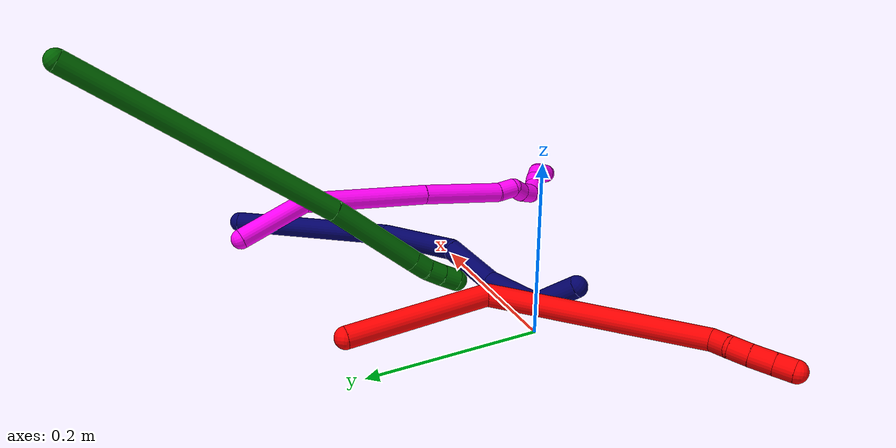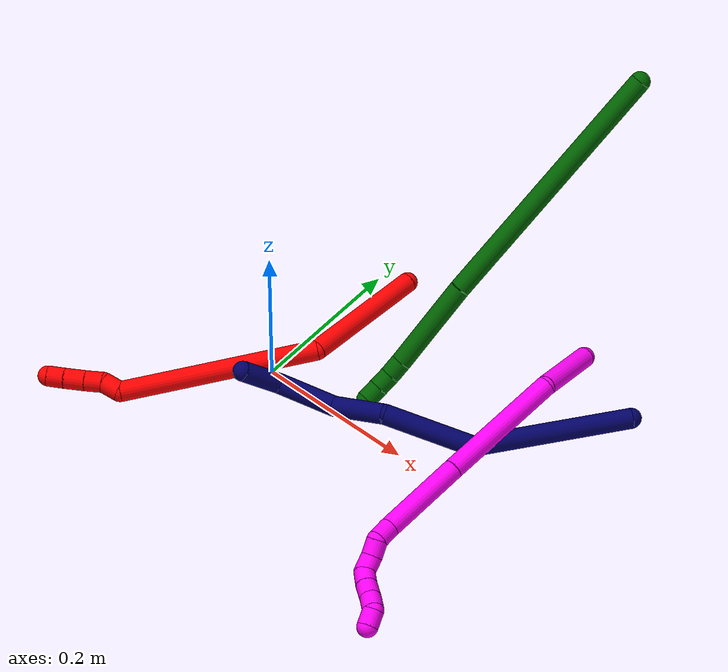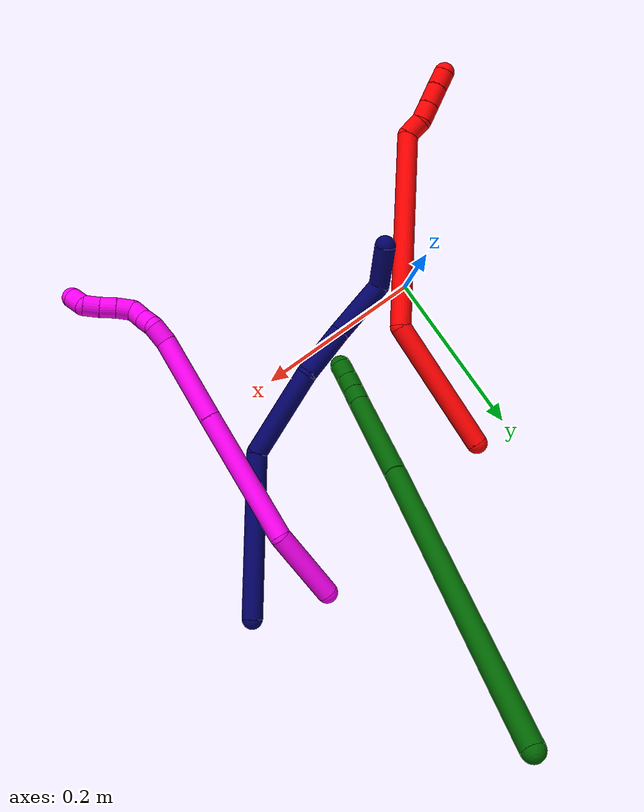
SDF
<sdf version="1.7">
 <world name="default">
  <model name="2">
   <static>0</static>
   <link name="2">
    <collision name="collision-cylinder-e_1_1_4">
     <pose>-0.042284 -0.063169 0.031281 1.11099 -0.540317 -0.340449</pose>
     <geometry><cylinder><radius>0.0125</radius><length>0.164398</length></cylinder></geometry>
     <surface>
      <friction><ode><mu>1.16</mu><mu2>1.16</mu2><slip1>0</slip1><slip2>0</slip2></ode></friction>
      <contact><ode><kp>1e+06</kp><kd>1</kd><max_vel>0</max_vel><min_depth>0.001</min_depth></ode></contact>
     </surface>
    </collision>
    <visual name="visual-cylinder-e_1_1_4">
     <pose>-0.042284 -0.063169 0.031281 1.11099 -0.540317 -0.340449</pose>
     <geometry><cylinder><radius>0.0125</radius><length>0.164398</length></cylinder></geometry>
     <material><ambient>1 0 0 1</ambient></material>
    </visual>
    <collision name="collision-cylinder-e_2_4_5">
     <pose>-0.189798 -0.185622 0.052059 1.74614 -1.0511 -1.21032</pose>
     <geometry><cylinder><radius>0.0125</radius><length>0.242474</length></cylinder></geometry>
     <surface>
      <friction><ode><mu>1.16</mu><mu2>1.16</mu2><slip1>0</slip1><slip2>0</slip2></ode></friction>
      <contact><ode><kp>1e+06</kp><kd>1</kd><max_vel>0</max_vel><min_depth>0.001</min_depth></ode></contact>
     </surface>
    </collision>
    <visual name="visual-cylinder-e_2_4_5">
     <pose>-0.189798 -0.185622 0.052059 1.74614 -1.0511 -1.21032</pose>
     <geometry><cylinder><radius>0.0125</radius><length>0.242474</length></cylinder></geometry>
     <material><ambient>1 0 0 1</ambient></material>
    </visual>
    <collision name="collision-cylinder-e_3_5_6">
     <pose>-0.306062 -0.242159 0.038729 -2.37052 -1.22769 2.09649</pose>
     <geometry><cylinder><radius>0.0125</radius><length>0.023434</length></cylinder></geometry>
     <surface>
      <friction><ode><mu>1.16</mu><mu2>1.16</mu2><slip1>0</slip1><slip2>0</slip2></ode></friction>
      <contact><ode><kp>1e+06</kp><kd>1</kd><max_vel>0</max_vel><min_depth>0.001</min_depth></ode></contact>
     </surface>
    </collision>
    <visual name="visual-cylinder-e_3_5_6">
     <pose>-0.306062 -0.242159 0.038729 -2.37052 -1.22769 2.09649</pose>
     <geometry><cylinder><radius>0.0125</radius><length>0.023434</length></cylinder></geometry>
     <material><ambient>1 0 0 1</ambient></material>
    </visual>
    <collision name="collision-cylinder-e_4_6_7">
     <pose>-0.327721 -0.241369 0.032794 2.57977 -1.23793 -2.37188</pose>
     <geometry><cylinder><radius>0.0125</radius><length>0.022483</length></cylinder></geometry>
     <surface>
      <friction><ode><mu>1.16</mu><mu2>1.16</mu2><slip1>0</slip1><slip2>0</slip2></ode></friction>
      <contact><ode><kp>1e+06</kp><kd>1</kd><max_vel>0</max_vel><min_depth>0.001</min_depth></ode></contact>
     </surface>
    </collision>
    <visual name="visual-cylinder-e_4_6_7">
     <pose>-0.327721 -0.241369 0.032794 2.57977 -1.23793 -2.37188</pose>
     <geometry><cylinder><radius>0.0125</radius><length>0.022483</length></cylinder></geometry>
     <material><ambient>1 0 0 1</ambient></material>
    </visual>
    <collision name="collision-cylinder-e_5_7_8">
     <pose>-0.350797 -0.245343 0.026674 2.55146 -1.28756 -2.37195</pose>
     <geometry><cylinder><radius>0.0125</radius><length>0.025937</length></cylinder></geometry>
     <surface>
      <friction><ode><mu>1.16</mu><mu2>1.16</mu2><slip1>0</slip1><slip2>0</slip2></ode></friction>
      <contact><ode><kp>1e+06</kp><kd>1</kd><max_vel>0</max_vel><min_depth>0.001</min_depth></ode></contact>
     </surface>
    </collision>
    <visual name="visual-cylinder-e_5_7_8">
     <pose>-0.350797 -0.245343 0.026674 2.55146 -1.28756 -2.37195</pose>
     <geometry><cylinder><radius>0.0125</radius><length>0.025937</length></cylinder></geometry>
     <material><ambient>1 0 0 1</ambient></material>
    </visual>
    <collision name="collision-cylinder-e_6_8_2">
     <pose>-0.373508 -0.248789 0.021241 2.60835 -1.3033 -2.45394</pose>
     <geometry><cylinder><radius>0.0125</radius><length>0.021274</length></cylinder></geometry>
     <surface>
      <friction><ode><mu>1.16</mu><mu2>1.16</mu2><slip1>0</slip1><slip2>0</slip2></ode></friction>
      <contact><ode><kp>1e+06</kp><kd>1</kd><max_vel>0</max_vel><min_depth>0.001</min_depth></ode></contact>
     </surface>
    </collision>
    <visual name="visual-cylinder-e_6_8_2">
     <pose>-0.373508 -0.248789 0.021241 2.60835 -1.3033 -2.45394</pose>
     <geometry><cylinder><radius>0.0125</radius><length>0.021274</length></cylinder></geometry>
     <material><ambient>1 0 0 1</ambient></material>
    </visual>
    <collision name="collision-sphere-2">
     <pose>-0.383766 -0.250218 0.01882 0 -0 0</pose>
     <geometry><sphere><radius>0.0125</radius></sphere></geometry>
     <surface>
      <friction><ode><mu>1.16</mu><mu2>1.16</mu2><slip1>0</slip1><slip2>0</slip2></ode></friction>
      <contact><ode><kp>1e+06</kp><kd>1</kd><max_vel>0</max_vel><min_depth>0.001</min_depth></ode></contact>
     </surface>
    </collision>
    <visual name="visual-sphere-2">
     <pose>-0.383766 -0.250218 0.01882 0 -0 0</pose>
     <geometry><sphere><radius>0.0125</radius></sphere></geometry>
     <material><ambient>1 0 0 1</ambient></material>
    </visual>
    <collision name="collision-sphere-4">
     <pose>-0.084568 -0.126337 0.062562 0 -0 0</pose>
     <geometry><sphere><radius>0.0125</radius></sphere></geometry>
     <surface>
      <friction><ode><mu>1.16</mu><mu2>1.16</mu2><slip1>0</slip1><slip2>0</slip2></ode></friction>
      <contact><ode><kp>1e+06</kp><kd>1</kd><max_vel>0</max_vel><min_depth>0.001</min_depth></ode></contact>
     </surface>
    </collision>
    <visual name="visual-sphere-4">
     <pose>-0.084568 -0.126337 0.062562 0 -0 0</pose>
     <geometry><sphere><radius>0.0125</radius></sphere></geometry>
     <material><ambient>1 0 0 1</ambient></material>
    </visual>
    <collision name="collision-sphere-1">
     <geometry><sphere><radius>0.0125</radius></sphere></geometry>
     <surface>
      <friction><ode><mu>1.16</mu><mu2>1.16</mu2><slip1>0</slip1><slip2>0</slip2></ode></friction>
      <contact><ode><kp>1e+06</kp><kd>1</kd><max_vel>0</max_vel><min_depth>0.001</min_depth></ode></contact>
     </surface>
    </collision>
    <visual name="visual-sphere-1">
     <geometry><sphere><radius>0.0125</radius></sphere></geometry>
     <material><ambient>1 0 0 1</ambient></material>
    </visual>
    <collision name="collision-sphere-8">
     <pose>-0.363249 -0.247359 0.023663 0 -0 0</pose>
     <geometry><sphere><radius>0.0125</radius></sphere></geometry>
     <surface>
      <friction><ode><mu>1.16</mu><mu2>1.16</mu2><slip1>0</slip1><slip2>0</slip2></ode></friction>
      <contact><ode><kp>1e+06</kp><kd>1</kd><max_vel>0</max_vel><min_depth>0.001</min_depth></ode></contact>
     </surface>
    </collision>
    <visual name="visual-sphere-8">
     <pose>-0.363249 -0.247359 0.023663 0 -0 0</pose>
     <geometry><sphere><radius>0.0125</radius></sphere></geometry>
     <material><ambient>1 0 0 1</ambient></material>
    </visual>
    <collision name="collision-sphere-5">
     <pose>-0.295029 -0.244906 0.041556 0 -0 0</pose>
     <geometry><sphere><radius>0.0125</radius></sphere></geometry>
     <surface>
      <friction><ode><mu>1.16</mu><mu2>1.16</mu2><slip1>0</slip1><slip2>0</slip2></ode></friction>
      <contact><ode><kp>1e+06</kp><kd>1</kd><max_vel>0</max_vel><min_depth>0.001</min_depth></ode></contact>
     </surface>
    </collision>
    <visual name="visual-sphere-5">
     <pose>-0.295029 -0.244906 0.041556 0 -0 0</pose>
     <geometry><sphere><radius>0.0125</radius></sphere></geometry>
     <material><ambient>1 0 0 1</ambient></material>
    </visual>
    <collision name="collision-sphere-6">
     <pose>-0.317096 -0.239412 0.035902 0 -0 0</pose>
     <geometry><sphere><radius>0.0125</radius></sphere></geometry>
     <surface>
      <friction><ode><mu>1.16</mu><mu2>1.16</mu2><slip1>0</slip1><slip2>0</slip2></ode></friction>
      <contact><ode><kp>1e+06</kp><kd>1</kd><max_vel>0</max_vel><min_depth>0.001</min_depth></ode></contact>
     </surface>
    </collision>
    <visual name="visual-sphere-6">
     <pose>-0.317096 -0.239412 0.035902 0 -0 0</pose>
     <geometry><sphere><radius>0.0125</radius></sphere></geometry>
     <material><ambient>1 0 0 1</ambient></material>
    </visual>
    <collision name="collision-sphere-7">
     <pose>-0.338345 -0.243326 0.029685 0 -0 0</pose>
     <geometry><sphere><radius>0.0125</radius></sphere></geometry>
     <surface>
      <friction><ode><mu>1.16</mu><mu2>1.16</mu2><slip1>0</slip1><slip2>0</slip2></ode></friction>
      <contact><ode><kp>1e+06</kp><kd>1</kd><max_vel>0</max_vel><min_depth>0.001</min_depth></ode></contact>
     </surface>
    </collision>
    <visual name="visual-sphere-7">
     <pose>-0.338345 -0.243326 0.029685 0 -0 0</pose>
     <geometry><sphere><radius>0.0125</radius></sphere></geometry>
     <material><ambient>1 0 0 1</ambient></material>
    </visual>
    <inertial>
     <pose>-0.169115 -0.156302 0.041108 0 -0 0</pose>
     <mass>0.5</mass>
     <inertia>
      <ixx>-0.000182</ixx>
      <ixy>0</ixy>
      <ixz>0</ixz>
      <iyy>0.000423</iyy>
      <iyz>0</iyz>
      <izz>0.002118</izz>
     </inertia>
    </inertial>
   </link>
   <pose>0.044883 0.202432 0.024365 0.522041 0.244905 0.50483</pose>
  </model>
  <model name="6">
   <static>0</static>
   <link name="6">
    <collision name="collision-cylinder-e_1_1_4">
     <pose>-0.007167 -0.056381 -0.151963 2.78632 -0.044191 -0.244956</pose>
     <geometry><cylinder><radius>0.0125</radius><length>0.324487</length></cylinder></geometry>
     <surface>
      <friction><ode><mu>1.16</mu><mu2>1.16</mu2><slip1>0</slip1><slip2>0</slip2></ode></friction>
      <contact><ode><kp>1e+06</kp><kd>1</kd><max_vel>0</max_vel><min_depth>0.001</min_depth></ode></contact>
     </surface>
    </collision>
    <visual name="visual-cylinder-e_1_1_4">
     <pose>-0.007167 -0.056381 -0.151963 2.78632 -0.044191 -0.244956</pose>
     <geometry><cylinder><radius>0.0125</radius><length>0.324487</length></cylinder></geometry>
     <material><ambient>0 0.392157 0.003922 1</ambient></material>
    </visual>
    <collision name="collision-cylinder-e_2_4_5">
     <pose>-0.014588 -0.129079 -0.358253 2.84979 -0.004475 -0.030454</pose>
     <geometry><cylinder><radius>0.0125</radius><length>0.11345</length></cylinder></geometry>
     <surface>
      <friction><ode><mu>1.16</mu><mu2>1.16</mu2><slip1>0</slip1><slip2>0</slip2></ode></friction>
      <contact><ode><kp>1e+06</kp><kd>1</kd><max_vel>0</max_vel><min_depth>0.001</min_depth></ode></contact>
     </surface>
    </collision>
    <visual name="visual-cylinder-e_2_4_5">
     <pose>-0.014588 -0.129079 -0.358253 2.84979 -0.004475 -0.030454</pose>
     <geometry><cylinder><radius>0.0125</radius><length>0.11345</length></cylinder></geometry>
     <material><ambient>0 0.392157 0.003922 1</ambient></material>
    </visual>
    <collision name="collision-cylinder-e_3_5_6">
     <pose>-0.015166 -0.148574 -0.422772 2.8395 -0.030351 -0.198766</pose>
     <geometry><cylinder><radius>0.0125</radius><length>0.021361</length></cylinder></geometry>
     <surface>
      <friction><ode><mu>1.16</mu><mu2>1.16</mu2><slip1>0</slip1><slip2>0</slip2></ode></friction>
      <contact><ode><kp>1e+06</kp><kd>1</kd><max_vel>0</max_vel><min_depth>0.001</min_depth></ode></contact>
     </surface>
    </collision>
    <visual name="visual-cylinder-e_3_5_6">
     <pose>-0.015166 -0.148574 -0.422772 2.8395 -0.030351 -0.198766</pose>
     <geometry><cylinder><radius>0.0125</radius><length>0.021361</length></cylinder></geometry>
     <material><ambient>0 0.392157 0.003922 1</ambient></material>
    </visual>
    <collision name="collision-cylinder-e_4_6_7">
     <pose>-0.016362 -0.156262 -0.442159 2.68538 -0.084906 -0.361958</pose>
     <geometry><cylinder><radius>0.0125</radius><length>0.020559</length></cylinder></geometry>
     <surface>
      <friction><ode><mu>1.16</mu><mu2>1.16</mu2><slip1>0</slip1><slip2>0</slip2></ode></friction>
      <contact><ode><kp>1e+06</kp><kd>1</kd><max_vel>0</max_vel><min_depth>0.001</min_depth></ode></contact>
     </surface>
    </collision>
    <visual name="visual-cylinder-e_4_6_7">
     <pose>-0.016362 -0.156262 -0.442159 2.68538 -0.084906 -0.361958</pose>
     <geometry><cylinder><radius>0.0125</radius><length>0.020559</length></cylinder></geometry>
     <material><ambient>0 0.392157 0.003922 1</ambient></material>
    </visual>
    <collision name="collision-cylinder-e_5_7_2">
     <pose>-0.01809 -0.165551 -0.460179 2.64558 -0.085123 -0.333248</pose>
     <geometry><cylinder><radius>0.0125</radius><length>0.020143</length></cylinder></geometry>
     <surface>
      <friction><ode><mu>1.16</mu><mu2>1.16</mu2><slip1>0</slip1><slip2>0</slip2></ode></friction>
      <contact><ode><kp>1e+06</kp><kd>1</kd><max_vel>0</max_vel><min_depth>0.001</min_depth></ode></contact>
     </surface>
    </collision>
    <visual name="visual-cylinder-e_5_7_2">
     <pose>-0.01809 -0.165551 -0.460179 2.64558 -0.085123 -0.333248</pose>
     <geometry><cylinder><radius>0.0125</radius><length>0.020143</length></cylinder></geometry>
     <material><ambient>0 0.392157 0.003922 1</ambient></material>
    </visual>
    <collision name="collision-sphere-2">
     <pose>-0.018947 -0.170327 -0.469005 0 -0 0</pose>
     <geometry><sphere><radius>0.0125</radius></sphere></geometry>
     <surface>
      <friction><ode><mu>1.16</mu><mu2>1.16</mu2><slip1>0</slip1><slip2>0</slip2></ode></friction>
      <contact><ode><kp>1e+06</kp><kd>1</kd><max_vel>0</max_vel><min_depth>0.001</min_depth></ode></contact>
     </surface>
    </collision>
    <visual name="visual-sphere-2">
     <pose>-0.018947 -0.170327 -0.469005 0 -0 0</pose>
     <geometry><sphere><radius>0.0125</radius></sphere></geometry>
     <material><ambient>0 0.392157 0.003922 1</ambient></material>
    </visual>
    <collision name="collision-sphere-7">
     <pose>-0.017234 -0.160775 -0.451354 0 -0 0</pose>
     <geometry><sphere><radius>0.0125</radius></sphere></geometry>
     <surface>
      <friction><ode><mu>1.16</mu><mu2>1.16</mu2><slip1>0</slip1><slip2>0</slip2></ode></friction>
      <contact><ode><kp>1e+06</kp><kd>1</kd><max_vel>0</max_vel><min_depth>0.001</min_depth></ode></contact>
     </surface>
    </collision>
    <visual name="visual-sphere-7">
     <pose>-0.017234 -0.160775 -0.451354 0 -0 0</pose>
     <geometry><sphere><radius>0.0125</radius></sphere></geometry>
     <material><ambient>0 0.392157 0.003922 1</ambient></material>
    </visual>
    <collision name="collision-sphere-6">
     <pose>-0.015491 -0.15175 -0.432964 0 -0 0</pose>
     <geometry><sphere><radius>0.0125</radius></sphere></geometry>
     <surface>
      <friction><ode><mu>1.16</mu><mu2>1.16</mu2><slip1>0</slip1><slip2>0</slip2></ode></friction>
      <contact><ode><kp>1e+06</kp><kd>1</kd><max_vel>0</max_vel><min_depth>0.001</min_depth></ode></contact>
     </surface>
    </collision>
    <visual name="visual-sphere-6">
     <pose>-0.015491 -0.15175 -0.432964 0 -0 0</pose>
     <geometry><sphere><radius>0.0125</radius></sphere></geometry>
     <material><ambient>0 0.392157 0.003922 1</ambient></material>
    </visual>
    <collision name="collision-sphere-5">
     <pose>-0.014842 -0.145398 -0.412579 0 -0 0</pose>
     <geometry><sphere><radius>0.0125</radius></sphere></geometry>
     <surface>
      <friction><ode><mu>1.16</mu><mu2>1.16</mu2><slip1>0</slip1><slip2>0</slip2></ode></friction>
      <contact><ode><kp>1e+06</kp><kd>1</kd><max_vel>0</max_vel><min_depth>0.001</min_depth></ode></contact>
     </surface>
    </collision>
    <visual name="visual-sphere-5">
     <pose>-0.014842 -0.145398 -0.412579 0 -0 0</pose>
     <geometry><sphere><radius>0.0125</radius></sphere></geometry>
     <material><ambient>0 0.392157 0.003922 1</ambient></material>
    </visual>
    <collision name="collision-sphere-1">
     <geometry><sphere><radius>0.0125</radius></sphere></geometry>
     <surface>
      <friction><ode><mu>1.16</mu><mu2>1.16</mu2><slip1>0</slip1><slip2>0</slip2></ode></friction>
      <contact><ode><kp>1e+06</kp><kd>1</kd><max_vel>0</max_vel><min_depth>0.001</min_depth></ode></contact>
     </surface>
    </collision>
    <visual name="visual-sphere-1">
     <geometry><sphere><radius>0.0125</radius></sphere></geometry>
     <material><ambient>0 0.392157 0.003922 1</ambient></material>
    </visual>
    <collision name="collision-sphere-4">
     <pose>-0.014335 -0.112761 -0.303927 0 -0 0</pose>
     <geometry><sphere><radius>0.0125</radius></sphere></geometry>
     <surface>
      <friction><ode><mu>1.16</mu><mu2>1.16</mu2><slip1>0</slip1><slip2>0</slip2></ode></friction>
      <contact><ode><kp>1e+06</kp><kd>1</kd><max_vel>0</max_vel><min_depth>0.001</min_depth></ode></contact>
     </surface>
    </collision>
    <visual name="visual-sphere-4">
     <pose>-0.014335 -0.112761 -0.303927 0 -0 0</pose>
     <geometry><sphere><radius>0.0125</radius></sphere></geometry>
     <material><ambient>0 0.392157 0.003922 1</ambient></material>
    </visual>
    <inertial>
     <pose>-0.010011 -0.08532 -0.234689 0 -0 0</pose>
     <mass>0.5</mass>
     <inertia>
      <ixx>0.002203</ixx>
      <ixy>0</ixy>
      <ixz>0</ixz>
      <iyy>-0.003427</iyy>
      <iyz>0</iyz>
      <izz>0.001123</izz>
     </inertia>
    </inertial>
   </link>
   <pose>0.209495 0.425976 0.307668 -0.504079 0.392557 0.143593</pose>
  </model>
  <model name="7">
   <static>0</static>
   <link name="7">
    <collision name="collision-cylinder-e_1_1_4">
     <pose>-0.064204 0.014598 -0.071741 -2.94085 -0.719942 2.61867</pose>
     <geometry><cylinder><radius>0.0125</radius><length>0.194751</length></cylinder></geometry>
     <surface>
      <friction><ode><mu>1.16</mu><mu2>1.16</mu2><slip1>0</slip1><slip2>0</slip2></ode></friction>
      <contact><ode><kp>1e+06</kp><kd>1</kd><max_vel>0</max_vel><min_depth>0.001</min_depth></ode></contact>
     </surface>
    </collision>
    <visual name="visual-cylinder-e_1_1_4">
     <pose>-0.064204 0.014598 -0.071741 -2.94085 -0.719942 2.61867</pose>
     <geometry><cylinder><radius>0.0125</radius><length>0.194751</length></cylinder></geometry>
     <material><ambient>0.003922 0 0.403922 1</ambient></material>
    </visual>
    <collision name="collision-cylinder-e_2_4_5">
     <pose>-0.161151 0.065001 -0.171031 -2.22662 -0.627174 1.16492</pose>
     <geometry><cylinder><radius>0.0125</radius><length>0.111588</length></cylinder></geometry>
     <surface>
      <friction><ode><mu>1.16</mu><mu2>1.16</mu2><slip1>0</slip1><slip2>0</slip2></ode></friction>
      <contact><ode><kp>1e+06</kp><kd>1</kd><max_vel>0</max_vel><min_depth>0.001</min_depth></ode></contact>
     </surface>
    </collision>
    <visual name="visual-cylinder-e_2_4_5">
     <pose>-0.161151 0.065001 -0.171031 -2.22662 -0.627174 1.16492</pose>
     <geometry><cylinder><radius>0.0125</radius><length>0.111588</length></cylinder></geometry>
     <material><ambient>0.003922 0 0.403922 1</ambient></material>
    </visual>
    <collision name="collision-cylinder-e_3_5_6">
     <pose>-0.201735 0.122977 -0.222741 -2.39909 -0.234708 0.588115</pose>
     <geometry><cylinder><radius>0.0125</radius><length>0.067434</length></cylinder></geometry>
     <surface>
      <friction><ode><mu>1.16</mu><mu2>1.16</mu2><slip1>0</slip1><slip2>0</slip2></ode></friction>
      <contact><ode><kp>1e+06</kp><kd>1</kd><max_vel>0</max_vel><min_depth>0.001</min_depth></ode></contact>
     </surface>
    </collision>
    <visual name="visual-cylinder-e_3_5_6">
     <pose>-0.201735 0.122977 -0.222741 -2.39909 -0.234708 0.588115</pose>
     <geometry><cylinder><radius>0.0125</radius><length>0.067434</length></cylinder></geometry>
     <material><ambient>0.003922 0 0.403922 1</ambient></material>
    </visual>
    <collision name="collision-cylinder-e_4_6_7">
     <pose>-0.225713 0.172439 -0.265664 -2.17309 -0.45339 0.826493</pose>
     <geometry><cylinder><radius>0.0125</radius><length>0.073679</length></cylinder></geometry>
     <surface>
      <friction><ode><mu>1.16</mu><mu2>1.16</mu2><slip1>0</slip1><slip2>0</slip2></ode></friction>
      <contact><ode><kp>1e+06</kp><kd>1</kd><max_vel>0</max_vel><min_depth>0.001</min_depth></ode></contact>
     </surface>
    </collision>
    <visual name="visual-cylinder-e_4_6_7">
     <pose>-0.225713 0.172439 -0.265664 -2.17309 -0.45339 0.826493</pose>
     <geometry><cylinder><radius>0.0125</radius><length>0.073679</length></cylinder></geometry>
     <material><ambient>0.003922 0 0.403922 1</ambient></material>
    </visual>
    <collision name="collision-cylinder-e_5_7_2">
     <pose>-0.266497 0.206456 -0.290554 -2.30968 -1.21714 2.01157</pose>
     <geometry><cylinder><radius>0.0125</radius><length>0.052547</length></cylinder></geometry>
     <surface>
      <friction><ode><mu>1.16</mu><mu2>1.16</mu2><slip1>0</slip1><slip2>0</slip2></ode></friction>
      <contact><ode><kp>1e+06</kp><kd>1</kd><max_vel>0</max_vel><min_depth>0.001</min_depth></ode></contact>
     </surface>
    </collision>
    <visual name="visual-cylinder-e_5_7_2">
     <pose>-0.266497 0.206456 -0.290554 -2.30968 -1.21714 2.01157</pose>
     <geometry><cylinder><radius>0.0125</radius><length>0.052547</length></cylinder></geometry>
     <material><ambient>0.003922 0 0.403922 1</ambient></material>
    </visual>
    <collision name="collision-sphere-2">
     <pose>-0.291144 0.213182 -0.296682 0 -0 0</pose>
     <geometry><sphere><radius>0.0125</radius></sphere></geometry>
     <surface>
      <friction><ode><mu>1.16</mu><mu2>1.16</mu2><slip1>0</slip1><slip2>0</slip2></ode></friction>
      <contact><ode><kp>1e+06</kp><kd>1</kd><max_vel>0</max_vel><min_depth>0.001</min_depth></ode></contact>
     </surface>
    </collision>
    <visual name="visual-sphere-2">
     <pose>-0.291144 0.213182 -0.296682 0 -0 0</pose>
     <geometry><sphere><radius>0.0125</radius></sphere></geometry>
     <material><ambient>0.003922 0 0.403922 1</ambient></material>
    </visual>
    <collision name="collision-sphere-7">
     <pose>-0.241849 0.199729 -0.284426 0 -0 0</pose>
     <geometry><sphere><radius>0.0125</radius></sphere></geometry>
     <surface>
      <friction><ode><mu>1.16</mu><mu2>1.16</mu2><slip1>0</slip1><slip2>0</slip2></ode></friction>
      <contact><ode><kp>1e+06</kp><kd>1</kd><max_vel>0</max_vel><min_depth>0.001</min_depth></ode></contact>
     </surface>
    </collision>
    <visual name="visual-sphere-7">
     <pose>-0.241849 0.199729 -0.284426 0 -0 0</pose>
     <geometry><sphere><radius>0.0125</radius></sphere></geometry>
     <material><ambient>0.003922 0 0.403922 1</ambient></material>
    </visual>
    <collision name="collision-sphere-6">
     <pose>-0.209577 0.145149 -0.246902 0 -0 0</pose>
     <geometry><sphere><radius>0.0125</radius></sphere></geometry>
     <surface>
      <friction><ode><mu>1.16</mu><mu2>1.16</mu2><slip1>0</slip1><slip2>0</slip2></ode></friction>
      <contact><ode><kp>1e+06</kp><kd>1</kd><max_vel>0</max_vel><min_depth>0.001</min_depth></ode></contact>
     </surface>
    </collision>
    <visual name="visual-sphere-6">
     <pose>-0.209577 0.145149 -0.246902 0 -0 0</pose>
     <geometry><sphere><radius>0.0125</radius></sphere></geometry>
     <material><ambient>0.003922 0 0.403922 1</ambient></material>
    </visual>
    <collision name="collision-sphere-5">
     <pose>-0.193894 0.100805 -0.19858 0 -0 0</pose>
     <geometry><sphere><radius>0.0125</radius></sphere></geometry>
     <surface>
      <friction><ode><mu>1.16</mu><mu2>1.16</mu2><slip1>0</slip1><slip2>0</slip2></ode></friction>
      <contact><ode><kp>1e+06</kp><kd>1</kd><max_vel>0</max_vel><min_depth>0.001</min_depth></ode></contact>
     </surface>
    </collision>
    <visual name="visual-sphere-5">
     <pose>-0.193894 0.100805 -0.19858 0 -0 0</pose>
     <geometry><sphere><radius>0.0125</radius></sphere></geometry>
     <material><ambient>0.003922 0 0.403922 1</ambient></material>
    </visual>
    <collision name="collision-sphere-1">
     <geometry><sphere><radius>0.0125</radius></sphere></geometry>
     <surface>
      <friction><ode><mu>1.16</mu><mu2>1.16</mu2><slip1>0</slip1><slip2>0</slip2></ode></friction>
      <contact><ode><kp>1e+06</kp><kd>1</kd><max_vel>0</max_vel><min_depth>0.001</min_depth></ode></contact>
     </surface>
    </collision>
    <visual name="visual-sphere-1">
     <geometry><sphere><radius>0.0125</radius></sphere></geometry>
     <material><ambient>0.003922 0 0.403922 1</ambient></material>
    </visual>
    <collision name="collision-sphere-4">
     <pose>-0.128407 0.029197 -0.143482 0 -0 0</pose>
     <geometry><sphere><radius>0.0125</radius></sphere></geometry>
     <surface>
      <friction><ode><mu>1.16</mu><mu2>1.16</mu2><slip1>0</slip1><slip2>0</slip2></ode></friction>
      <contact><ode><kp>1e+06</kp><kd>1</kd><max_vel>0</max_vel><min_depth>0.001</min_depth></ode></contact>
     </surface>
    </collision>
    <visual name="visual-sphere-4">
     <pose>-0.128407 0.029197 -0.143482 0 -0 0</pose>
     <geometry><sphere><radius>0.0125</radius></sphere></geometry>
     <material><ambient>0.003922 0 0.403922 1</ambient></material>
    </visual>
    <inertial>
     <pose>-0.149448 0.083886 -0.165837 0 -0 0</pose>
     <mass>0.5</mass>
     <inertia><ixx>1.9e-05</ixx><ixy>0</ixy><ixz>0</ixz><iyy>0.00097</iyy><iyz>0</iyz><izz>0.000274</izz></inertia>
    </inertial>
   </link>
   <pose>0.3804 0.216931 0.011507 0.142772 0.820864 1.18534</pose>
  </model>
  <model name="10">
   <static>0</static>
   <link name="10">
    <collision name="collision-cylinder-e_1_1_4">
     <pose>0.01035 -0.001763 0.043659 0.040352 0.232593 0.004715</pose>
     <geometry><cylinder><radius>0.0125</radius><length>0.089808</length></cylinder></geometry>
     <surface>
      <friction><ode><mu>1.16</mu><mu2>1.16</mu2><slip1>0</slip1><slip2>0</slip2></ode></friction>
      <contact><ode><kp>1e+06</kp><kd>1</kd><max_vel>0</max_vel><min_depth>0.001</min_depth></ode></contact>
     </surface>
    </collision>
    <visual name="visual-cylinder-e_1_1_4">
     <pose>0.01035 -0.001763 0.043659 0.040352 0.232593 0.004715</pose>
     <geometry><cylinder><radius>0.0125</radius><length>0.089808</length></cylinder></geometry>
     <material><ambient>1 0 0.964706 1</ambient></material>
    </visual>
    <collision name="collision-cylinder-e_2_4_5">
     <pose>0.016545 -0.033693 0.161197 0.387677 -0.052035 -0.010217</pose>
     <geometry><cylinder><radius>0.0125</radius><length>0.159816</length></cylinder></geometry>
     <surface>
      <friction><ode><mu>1.16</mu><mu2>1.16</mu2><slip1>0</slip1><slip2>0</slip2></ode></friction>
      <contact><ode><kp>1e+06</kp><kd>1</kd><max_vel>0</max_vel><min_depth>0.001</min_depth></ode></contact>
     </surface>
    </collision>
    <visual name="visual-cylinder-e_2_4_5">
     <pose>0.016545 -0.033693 0.161197 0.387677 -0.052035 -0.010217</pose>
     <geometry><cylinder><radius>0.0125</radius><length>0.159816</length></cylinder></geometry>
     <material><ambient>1 0 0.964706 1</ambient></material>
    </visual>
    <collision name="collision-cylinder-e_3_5_6">
     <pose>0.008612 -0.085363 0.283492 0.417937 -0.071174 -0.0151</pose>
     <geometry><cylinder><radius>0.0125</radius><length>0.106224</length></cylinder></geometry>
     <surface>
      <friction><ode><mu>1.16</mu><mu2>1.16</mu2><slip1>0</slip1><slip2>0</slip2></ode></friction>
      <contact><ode><kp>1e+06</kp><kd>1</kd><max_vel>0</max_vel><min_depth>0.001</min_depth></ode></contact>
     </surface>
    </collision>
    <visual name="visual-cylinder-e_3_5_6">
     <pose>0.008612 -0.085363 0.283492 0.417937 -0.071174 -0.0151</pose>
     <geometry><cylinder><radius>0.0125</radius><length>0.106224</length></cylinder></geometry>
     <material><ambient>1 0 0.964706 1</ambient></material>
    </visual>
    <collision name="collision-cylinder-e_4_6_7">
     <pose>0.006445 -0.110297 0.343342 0.291664 0.134128 0.019729</pose>
     <geometry><cylinder><radius>0.0125</radius><length>0.024089</length></cylinder></geometry>
     <surface>
      <friction><ode><mu>1.16</mu><mu2>1.16</mu2><slip1>0</slip1><slip2>0</slip2></ode></friction>
      <contact><ode><kp>1e+06</kp><kd>1</kd><max_vel>0</max_vel><min_depth>0.001</min_depth></ode></contact>
     </surface>
    </collision>
    <visual name="visual-cylinder-e_4_6_7">
     <pose>0.006445 -0.110297 0.343342 0.291664 0.134128 0.019729</pose>
     <geometry><cylinder><radius>0.0125</radius><length>0.024089</length></cylinder></geometry>
     <material><ambient>1 0 0.964706 1</ambient></material>
    </visual>
    <collision name="collision-cylinder-e_5_7_8">
     <pose>0.008649 -0.122143 0.360166 1.00089 0.059243 0.032405</pose>
     <geometry><cylinder><radius>0.0125</radius><length>0.020021</length></cylinder></geometry>
     <surface>
      <friction><ode><mu>1.16</mu><mu2>1.16</mu2><slip1>0</slip1><slip2>0</slip2></ode></friction>
      <contact><ode><kp>1e+06</kp><kd>1</kd><max_vel>0</max_vel><min_depth>0.001</min_depth></ode></contact>
     </surface>
    </collision>
    <visual name="visual-cylinder-e_5_7_8">
     <pose>0.008649 -0.122143 0.360166 1.00089 0.059243 0.032405</pose>
     <geometry><cylinder><radius>0.0125</radius><length>0.020021</length></cylinder></geometry>
     <material><ambient>1 0 0.964706 1</ambient></material>
    </visual>
    <collision name="collision-cylinder-e_6_8_9">
     <pose>0.01048 -0.137391 0.372777 0.75803 0.123956 0.049421</pose>
     <geometry><cylinder><radius>0.0125</radius><length>0.020036</length></cylinder></geometry>
     <surface>
      <friction><ode><mu>1.16</mu><mu2>1.16</mu2><slip1>0</slip1><slip2>0</slip2></ode></friction>
      <contact><ode><kp>1e+06</kp><kd>1</kd><max_vel>0</max_vel><min_depth>0.001</min_depth></ode></contact>
     </surface>
    </collision>
    <visual name="visual-cylinder-e_6_8_9">
     <pose>0.01048 -0.137391 0.372777 0.75803 0.123956 0.049421</pose>
     <geometry><cylinder><radius>0.0125</radius><length>0.020036</length></cylinder></geometry>
     <material><ambient>1 0 0.964706 1</ambient></material>
    </visual>
    <collision name="collision-cylinder-e_7_9_10">
     <pose>0.019142 -0.148093 0.385472 0.614839 0.836315 0.280308</pose>
     <geometry><cylinder><radius>0.0125</radius><length>0.020005</length></cylinder></geometry>
     <surface>
      <friction><ode><mu>1.16</mu><mu2>1.16</mu2><slip1>0</slip1><slip2>0</slip2></ode></friction>
      <contact><ode><kp>1e+06</kp><kd>1</kd><max_vel>0</max_vel><min_depth>0.001</min_depth></ode></contact>
     </surface>
    </collision>
    <visual name="visual-cylinder-e_7_9_10">
     <pose>0.019142 -0.148093 0.385472 0.614839 0.836315 0.280308</pose>
     <geometry><cylinder><radius>0.0125</radius><length>0.020005</length></cylinder></geometry>
     <material><ambient>1 0 0.964706 1</ambient></material>
    </visual>
    <collision name="collision-cylinder-e_8_10_11">
     <pose>0.034709 -0.155473 0.395568 0.650183 0.951617 0.343929</pose>
     <geometry><cylinder><radius>0.0125</radius><length>0.02</length></cylinder></geometry>
     <surface>
      <friction><ode><mu>1.16</mu><mu2>1.16</mu2><slip1>0</slip1><slip2>0</slip2></ode></friction>
      <contact><ode><kp>1e+06</kp><kd>1</kd><max_vel>0</max_vel><min_depth>0.001</min_depth></ode></contact>
     </surface>
    </collision>
    <visual name="visual-cylinder-e_8_10_11">
     <pose>0.034709 -0.155473 0.395568 0.650183 0.951617 0.343929</pose>
     <geometry><cylinder><radius>0.0125</radius><length>0.02</length></cylinder></geometry>
     <material><ambient>1 0 0.964706 1</ambient></material>
    </visual>
    <collision name="collision-cylinder-e_9_11_12">
     <pose>0.05065 -0.162329 0.405482 0.563208 0.894198 0.275661</pose>
     <geometry><cylinder><radius>0.0125</radius><length>0.02</length></cylinder></geometry>
     <surface>
      <friction><ode><mu>1.16</mu><mu2>1.16</mu2><slip1>0</slip1><slip2>0</slip2></ode></friction>
      <contact><ode><kp>1e+06</kp><kd>1</kd><max_vel>0</max_vel><min_depth>0.001</min_depth></ode></contact>
     </surface>
    </collision>
    <visual name="visual-cylinder-e_9_11_12">
     <pose>0.05065 -0.162329 0.405482 0.563208 0.894198 0.275661</pose>
     <geometry><cylinder><radius>0.0125</radius><length>0.02</length></cylinder></geometry>
     <material><ambient>1 0 0.964706 1</ambient></material>
    </visual>
    <collision name="collision-cylinder-e_10_12_2">
     <pose>0.060236 -0.172973 0.417371 0.836166 0.179795 0.080052</pose>
     <geometry><cylinder><radius>0.0125</radius><length>0.02</length></cylinder></geometry>
     <surface>
      <friction><ode><mu>1.16</mu><mu2>1.16</mu2><slip1>0</slip1><slip2>0</slip2></ode></friction>
      <contact><ode><kp>1e+06</kp><kd>1</kd><max_vel>0</max_vel><min_depth>0.001</min_depth></ode></contact>
     </surface>
    </collision>
    <visual name="visual-cylinder-e_10_12_2">
     <pose>0.060236 -0.172973 0.417371 0.836166 0.179795 0.080052</pose>
     <geometry><cylinder><radius>0.0125</radius><length>0.02</length></cylinder></geometry>
     <material><ambient>1 0 0.964706 1</ambient></material>
    </visual>
    <collision name="collision-sphere-2">
     <pose>0.062024 -0.180274 0.423966 0 -0 0</pose>
     <geometry><sphere><radius>0.0125</radius></sphere></geometry>
     <surface>
      <friction><ode><mu>1.16</mu><mu2>1.16</mu2><slip1>0</slip1><slip2>0</slip2></ode></friction>
      <contact><ode><kp>1e+06</kp><kd>1</kd><max_vel>0</max_vel><min_depth>0.001</min_depth></ode></contact>
     </surface>
    </collision>
    <visual name="visual-sphere-2">
     <pose>0.062024 -0.180274 0.423966 0 -0 0</pose>
     <geometry><sphere><radius>0.0125</radius></sphere></geometry>
     <material><ambient>1 0 0.964706 1</ambient></material>
    </visual>
    <collision name="collision-sphere-12">
     <pose>0.058447 -0.165672 0.410776 0 -0 0</pose>
     <geometry><sphere><radius>0.0125</radius></sphere></geometry>
     <surface>
      <friction><ode><mu>1.16</mu><mu2>1.16</mu2><slip1>0</slip1><slip2>0</slip2></ode></friction>
      <contact><ode><kp>1e+06</kp><kd>1</kd><max_vel>0</max_vel><min_depth>0.001</min_depth></ode></contact>
     </surface>
    </collision>
    <visual name="visual-sphere-12">
     <pose>0.058447 -0.165672 0.410776 0 -0 0</pose>
     <geometry><sphere><radius>0.0125</radius></sphere></geometry>
     <material><ambient>1 0 0.964706 1</ambient></material>
    </visual>
    <collision name="collision-sphere-11">
     <pose>0.042853 -0.158986 0.400187 0 -0 0</pose>
     <geometry><sphere><radius>0.0125</radius></sphere></geometry>
     <surface>
      <friction><ode><mu>1.16</mu><mu2>1.16</mu2><slip1>0</slip1><slip2>0</slip2></ode></friction>
      <contact><ode><kp>1e+06</kp><kd>1</kd><max_vel>0</max_vel><min_depth>0.001</min_depth></ode></contact>
     </surface>
    </collision>
    <visual name="visual-sphere-11">
     <pose>0.042853 -0.158986 0.400187 0 -0 0</pose>
     <geometry><sphere><radius>0.0125</radius></sphere></geometry>
     <material><ambient>1 0 0.964706 1</ambient></material>
    </visual>
    <collision name="collision-sphere-10">
     <pose>0.026566 -0.151959 0.390948 0 -0 0</pose>
     <geometry><sphere><radius>0.0125</radius></sphere></geometry>
     <surface>
      <friction><ode><mu>1.16</mu><mu2>1.16</mu2><slip1>0</slip1><slip2>0</slip2></ode></friction>
      <contact><ode><kp>1e+06</kp><kd>1</kd><max_vel>0</max_vel><min_depth>0.001</min_depth></ode></contact>
     </surface>
    </collision>
    <visual name="visual-sphere-10">
     <pose>0.026566 -0.151959 0.390948 0 -0 0</pose>
     <geometry><sphere><radius>0.0125</radius></sphere></geometry>
     <material><ambient>1 0 0.964706 1</ambient></material>
    </visual>
    <collision name="collision-sphere-9">
     <pose>0.011719 -0.144226 0.379996 0 -0 0</pose>
     <geometry><sphere><radius>0.0125</radius></sphere></geometry>
     <surface>
      <friction><ode><mu>1.16</mu><mu2>1.16</mu2><slip1>0</slip1><slip2>0</slip2></ode></friction>
      <contact><ode><kp>1e+06</kp><kd>1</kd><max_vel>0</max_vel><min_depth>0.001</min_depth></ode></contact>
     </surface>
    </collision>
    <visual name="visual-sphere-9">
     <pose>0.011719 -0.144226 0.379996 0 -0 0</pose>
     <geometry><sphere><radius>0.0125</radius></sphere></geometry>
     <material><ambient>1 0 0.964706 1</ambient></material>
    </visual>
    <collision name="collision-sphere-4">
     <pose>0.020701 -0.003525 0.087319 0 -0 0</pose>
     <geometry><sphere><radius>0.0125</radius></sphere></geometry>
     <surface>
      <friction><ode><mu>1.16</mu><mu2>1.16</mu2><slip1>0</slip1><slip2>0</slip2></ode></friction>
      <contact><ode><kp>1e+06</kp><kd>1</kd><max_vel>0</max_vel><min_depth>0.001</min_depth></ode></contact>
     </surface>
    </collision>
    <visual name="visual-sphere-4">
     <pose>0.020701 -0.003525 0.087319 0 -0 0</pose>
     <geometry><sphere><radius>0.0125</radius></sphere></geometry>
     <material><ambient>1 0 0.964706 1</ambient></material>
    </visual>
    <collision name="collision-sphere-1">
     <geometry><sphere><radius>0.0125</radius></sphere></geometry>
     <surface>
      <friction><ode><mu>1.16</mu><mu2>1.16</mu2><slip1>0</slip1><slip2>0</slip2></ode></friction>
      <contact><ode><kp>1e+06</kp><kd>1</kd><max_vel>0</max_vel><min_depth>0.001</min_depth></ode></contact>
     </surface>
    </collision>
    <visual name="visual-sphere-1">
     <geometry><sphere><radius>0.0125</radius></sphere></geometry>
     <material><ambient>1 0 0.964706 1</ambient></material>
    </visual>
    <collision name="collision-sphere-8">
     <pose>0.009241 -0.130557 0.365558 0 -0 0</pose>
     <geometry><sphere><radius>0.0125</radius></sphere></geometry>
     <surface>
      <friction><ode><mu>1.16</mu><mu2>1.16</mu2><slip1>0</slip1><slip2>0</slip2></ode></friction>
      <contact><ode><kp>1e+06</kp><kd>1</kd><max_vel>0</max_vel><min_depth>0.001</min_depth></ode></contact>
     </surface>
    </collision>
    <visual name="visual-sphere-8">
     <pose>0.009241 -0.130557 0.365558 0 -0 0</pose>
     <geometry><sphere><radius>0.0125</radius></sphere></geometry>
     <material><ambient>1 0 0.964706 1</ambient></material>
    </visual>
    <collision name="collision-sphere-5">
     <pose>0.012389 -0.06386 0.235075 0 -0 0</pose>
     <geometry><sphere><radius>0.0125</radius></sphere></geometry>
     <surface>
      <friction><ode><mu>1.16</mu><mu2>1.16</mu2><slip1>0</slip1><slip2>0</slip2></ode></friction>
      <contact><ode><kp>1e+06</kp><kd>1</kd><max_vel>0</max_vel><min_depth>0.001</min_depth></ode></contact>
     </surface>
    </collision>
    <visual name="visual-sphere-5">
     <pose>0.012389 -0.06386 0.235075 0 -0 0</pose>
     <geometry><sphere><radius>0.0125</radius></sphere></geometry>
     <material><ambient>1 0 0.964706 1</ambient></material>
    </visual>
    <collision name="collision-sphere-6">
     <pose>0.004835 -0.106865 0.33191 0 -0 0</pose>
     <geometry><sphere><radius>0.0125</radius></sphere></geometry>
     <surface>
      <friction><ode><mu>1.16</mu><mu2>1.16</mu2><slip1>0</slip1><slip2>0</slip2></ode></friction>
      <contact><ode><kp>1e+06</kp><kd>1</kd><max_vel>0</max_vel><min_depth>0.001</min_depth></ode></contact>
     </surface>
    </collision>
    <visual name="visual-sphere-6">
     <pose>0.004835 -0.106865 0.33191 0 -0 0</pose>
     <geometry><sphere><radius>0.0125</radius></sphere></geometry>
     <material><ambient>1 0 0.964706 1</ambient></material>
    </visual>
    <collision name="collision-sphere-7">
     <pose>0.008056 -0.113729 0.354774 0 -0 0</pose>
     <geometry><sphere><radius>0.0125</radius></sphere></geometry>
     <surface>
      <friction><ode><mu>1.16</mu><mu2>1.16</mu2><slip1>0</slip1><slip2>0</slip2></ode></friction>
      <contact><ode><kp>1e+06</kp><kd>1</kd><max_vel>0</max_vel><min_depth>0.001</min_depth></ode></contact>
     </surface>
    </collision>
    <visual name="visual-sphere-7">
     <pose>0.008056 -0.113729 0.354774 0 -0 0</pose>
     <geometry><sphere><radius>0.0125</radius></sphere></geometry>
     <material><ambient>1 0 0.964706 1</ambient></material>
    </visual>
    <inertial>
     <pose>0.016643 -0.070488 0.229654 0 -0 0</pose>
     <mass>0.5</mass>
     <inertia>
      <ixx>0.000522</ixx>
      <ixy>0</ixy>
      <ixz>0</ixz>
      <iyy>0.000471</iyy>
      <iyz>0</iyz>
      <izz>0.00022</izz>
     </inertia>
    </inertial>
   </link>
   <pose>0.289843 0.240367 0.034115 1.2743 -0.373766 -0.05784</pose>
  </model>
 </world>
</sdf>
